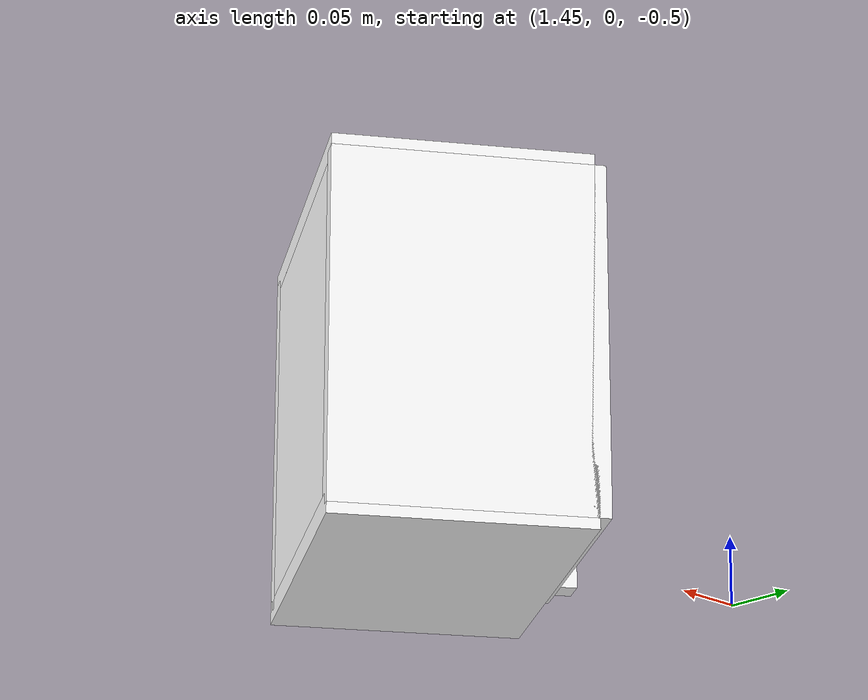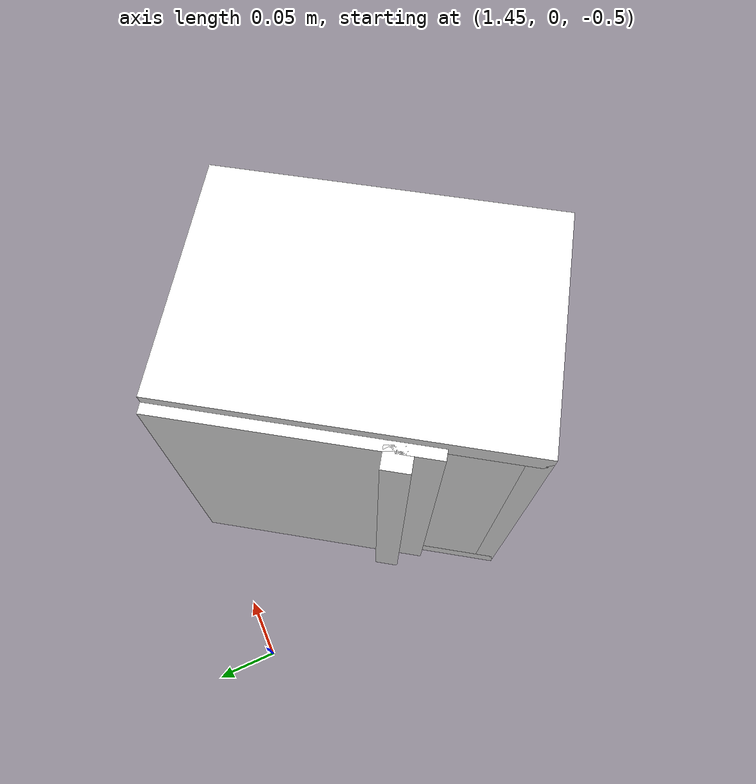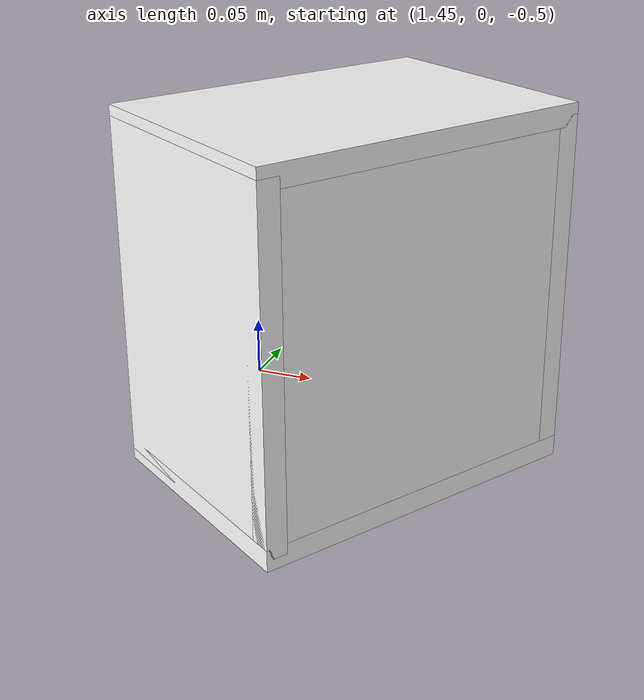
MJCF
<mujoco model="cabinet">
    <compiler angle="radian" eulerseq='zxy' />
    <option gravity = "0 0 0" />
    <option>
        <flag contact = "disable"/>
    </option>
    <statistic	extent="1.0" center="0.0 0.0 0.0"/>
    <visual>
        <map fogstart="3" fogend="5" force="0.1" znear=" 0.100000 " zfar=" 12.000000 "/>
    </visual>
    <size njmax="500" nconmax="100" />
    <actuator>
        <velocity joint="bottom_left_hinge" name="viva_revolution" kv='10'></velocity>
    </actuator>
    <asset>
        <texture builtin="flat" name="tabletex" height="32" width="32" rgb1="1 1 1" type="cube"></texture>
        <texture builtin="flat" name="objtex" height="32" width="32" rgb1="1 1 1" type="cube"></texture>
        <texture builtin="flat" name="handletex" height="32" width="32" rgb1="1 1 1" type="cube"></texture>
        <texture builtin="flat" name="wallpaper" height="32" width="32" rgb1="1 0 0" type="cube"></texture>
        <texture builtin="flat" name="kp" height="32" width="32" rgb1="1 1 1" type="cube"></texture>
        <material name="geomTable" shininess="0.03" specular="0.75" texture="tabletex"></material>
        <material name="geomObj" shininess="0.03" specular="0.75" texture="objtex"></material>
        <material name="geomHandle" shininess="0.03" specular="0.75" texture="handletex"></material>
        <material name="ax" shininess="0.03" specular="0.75" texture="wallpaper"></material>
        <material name="bg" shininess="0.03" specular="0.75" texture="wallpaper"></material>
        <material name="geomKeypad" shininess="0.03" specular="0.75" texture="kp"></material>
    </asset>
    <worldbody>
        <body name="cabinet_bottom" pos= " 1.591515 -0.157311 -0.468322 "  quat= " 0.286478 0.000000 0.000000 0.958087" >
            <inertial pos="0 0 0" mass="1" diaginertia="1 1 1" />
            <geom size= " 0.092946 0.130994 0.008124 "  type="box" material="geomObj" name="b"/>
            <body name="cabinet_left" pos= " 0.000000 -0.122870 0.129757 " >
                <inertial pos="0 0 0" mass="1" diaginertia="1 1 1" />
                <geom size= " 0.092946 0.008124 0.129757 "  type="box" material="geomObj" name="c" />
            </body>
            <body name="cabinet_right" pos= " 0.000000 0.122870 0.129757 " >
                <inertial pos="0 0 0" mass="1" diaginertia="1 1 1" />
                <geom size= " 0.092946 0.008124 0.129757 "  type="box" material="geomObj" name="d" />
            </body>
            <body name="cabinet_top" pos= " 0.000000 0.000000 0.259513 " >
                <inertial pos="0 0 0" mass="1" diaginertia="1 1 1" />
                <geom size= " 0.092946 0.130994 0.008124 "  type="box" material="geomObj" name="e"/>
            </body>
            <body name="cabinet_back" pos= " -0.084821 0.000000 0.129757 "  >
                <inertial pos="0 0 0" mass="1" diaginertia="1 1 1" />
                <geom size= " 0.008124 0.130994 0.129757 "  type="box" material="geomObj" name="f" />
            </body>
            <body name="cabinet_keypad" pos= " 0.008124 0.097246 0.129757 " >
                <inertial pos="0 0 0" mass="1" diaginertia="1 1 1" />
                <geom size= " 0.084821 0.032749 0.121632 "  type="box" material="geomKeypad" name="keypizzlemynizzle" />
            </body>
            <body name="cabinet_left_hinge" pos= " 0.092946 -0.130994 0.129757 " >
                <inertial pos= " 0.000000 0.098246 0.000000 "  mass="1" diaginertia="1 1 1" />
                <joint name="bottom_left_hinge" type="hinge" pos="0 0 0" axis="0 0 1" limited="true" range= "-2.3 0"  />
                <geom size= " 0.008124 0.098246 0.129757 "  pos= " 0.000000 0.098246 0.000000 "  type="box" material="geomObj" name="g"/>
                <body name="handle_link" pos= " 0.010000 0.166492 0.000000 " >
                    <inertial pos="0 0 0" mass="1" diaginertia="1 1 1" />
                    <geom size= " 0.010000 0.010000 0.129757 "  type="box" material="geomHandle" name="h"/>
                </body>
            </body>
        </body>
        <body name="external_camera_body_0" pos="0.0 0 0.00" >
            <camera euler="-1.57 1.57 0.0" fovy=" 54.280851 " name="external_camera_0" pos="0.0 0 0"></camera>
            <inertial pos= " 0.00 0.0 0.000000 " mass="1" diaginertia="1 1 1" />
            <joint name="cam_j" pos="0.0 0 0" axis = "1 0 0" type="free" />
        </body>
    </worldbody>
</mujoco>
